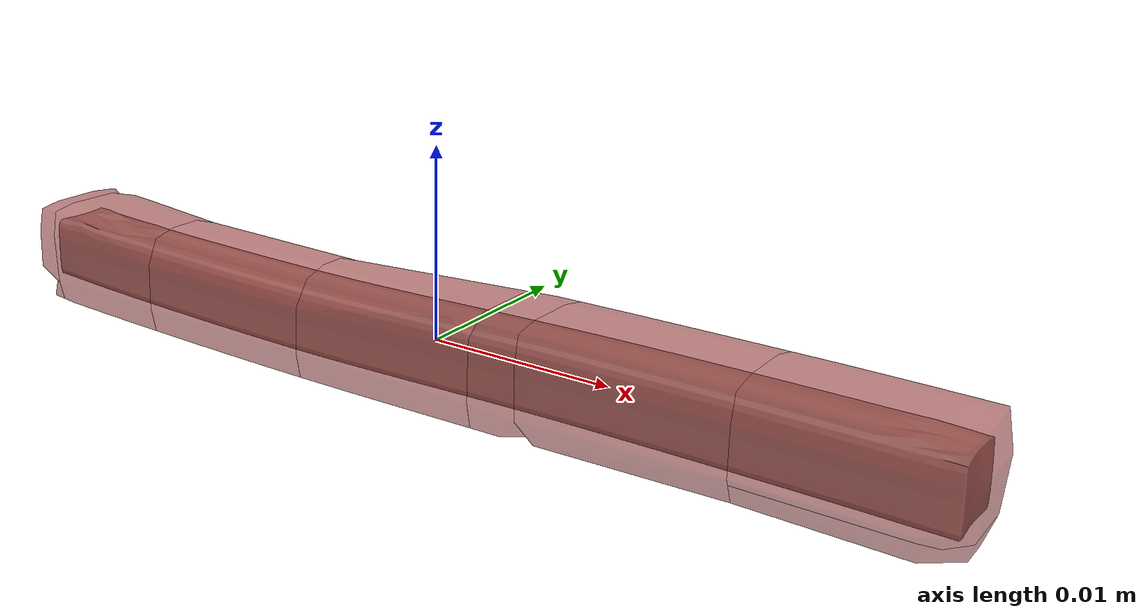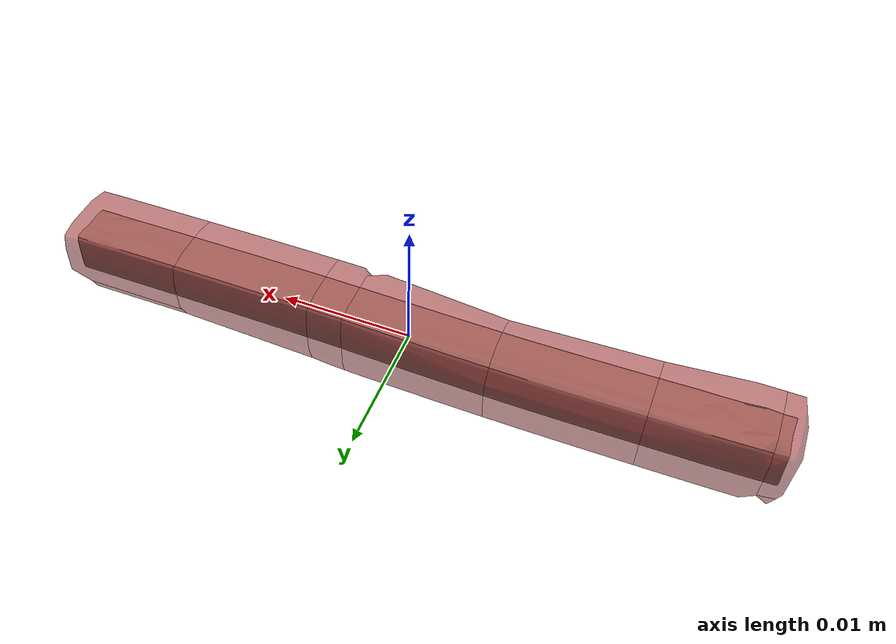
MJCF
<mujoco model="model">
  <compiler angle="radian"/>
  <asset>
    <mesh file="visual/CreamCheese002.obj" name="CreamCheese002_vis"/>
    <texture file="visual/T_BC001.png" name="CreamCheese002_material" type="2d"/>
    <material name="CreamCheese002_material" rgba="1 1 1 1.0" texture="CreamCheese002_material" shininess="0.5" specular="0.103448502657381"/>
    <mesh file="collision/CreamCheese002008.obj" name="CreamCheese002008_mesh"/>
    <mesh file="collision/CreamCheese002007.obj" name="CreamCheese002007_mesh"/>
    <mesh file="collision/CreamCheese002010.obj" name="CreamCheese002010_mesh"/>
    <mesh file="collision/CreamCheese002001.obj" name="CreamCheese002001_mesh"/>
    <mesh file="collision/CreamCheese002009.obj" name="CreamCheese002009_mesh"/>
    <mesh file="collision/CreamCheese002005.obj" name="CreamCheese002005_mesh"/>
    <mesh file="collision/CreamCheese002002.obj" name="CreamCheese002002_mesh"/>
    <mesh file="collision/CreamCheese002006.obj" name="CreamCheese002006_mesh"/>
    <mesh file="collision/CreamCheese002004.obj" name="CreamCheese002004_mesh"/>
    <mesh file="collision/CreamCheese002003.obj" name="CreamCheese002003_mesh"/>
  </asset>
  <default>
    <default class="visual">
      <geom conaffinity="0" contype="0" group="1" type="mesh"/>
    </default>
    <default class="collision">
      <geom group="0" rgba="0.5 0 0 0.5"/>
    </default>
    <default class="spawn">
      <geom group="0" rgba="1 1 1 0.5" contype="0" conaffinity="0"/>
      <site group="0" rgba="1 1 1 0.5"/>
    </default>
    <default class="region">
      <geom group="1" conaffinity="0" contype="0" rgba="0 1 0 0" mass="0"/>
    </default>
  </default>
  <worldbody>
    <body>
      <body name="object">
        <geom mesh="CreamCheese002_vis" type="mesh" solimp="0.998 0.998 0.001" solref="0.001 1" density="100" friction="0.95 0.3 0.1" class="visual" material="CreamCheese002_material"/>
        <geom mesh="CreamCheese002008_mesh" type="mesh" class="collision"/>
        <geom mesh="CreamCheese002007_mesh" type="mesh" class="collision"/>
        <geom mesh="CreamCheese002010_mesh" type="mesh" class="collision"/>
        <geom mesh="CreamCheese002001_mesh" type="mesh" class="collision"/>
        <geom mesh="CreamCheese002009_mesh" type="mesh" class="collision"/>
        <geom mesh="CreamCheese002005_mesh" type="mesh" class="collision"/>
        <geom mesh="CreamCheese002002_mesh" type="mesh" class="collision"/>
        <geom mesh="CreamCheese002006_mesh" type="mesh" class="collision"/>
        <geom mesh="CreamCheese002004_mesh" type="mesh" class="collision"/>
        <geom mesh="CreamCheese002003_mesh" type="mesh" class="collision"/>
        <geom class="region" name="reg_bbox" type="box" pos="1.8910000000000454e-05 -8.700000000000157e-06 -6.364999999999995e-05" size="0.02773355 0.00311732 0.00315305"/>
      </body>
    </body>
  </worldbody>
  <actuator/>
</mujoco>
